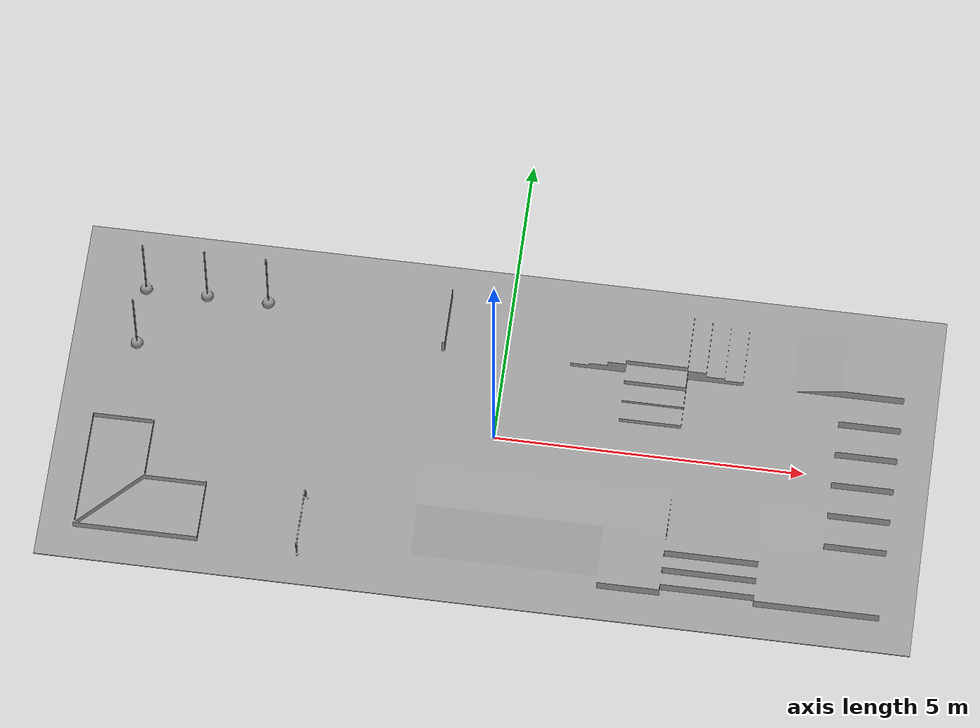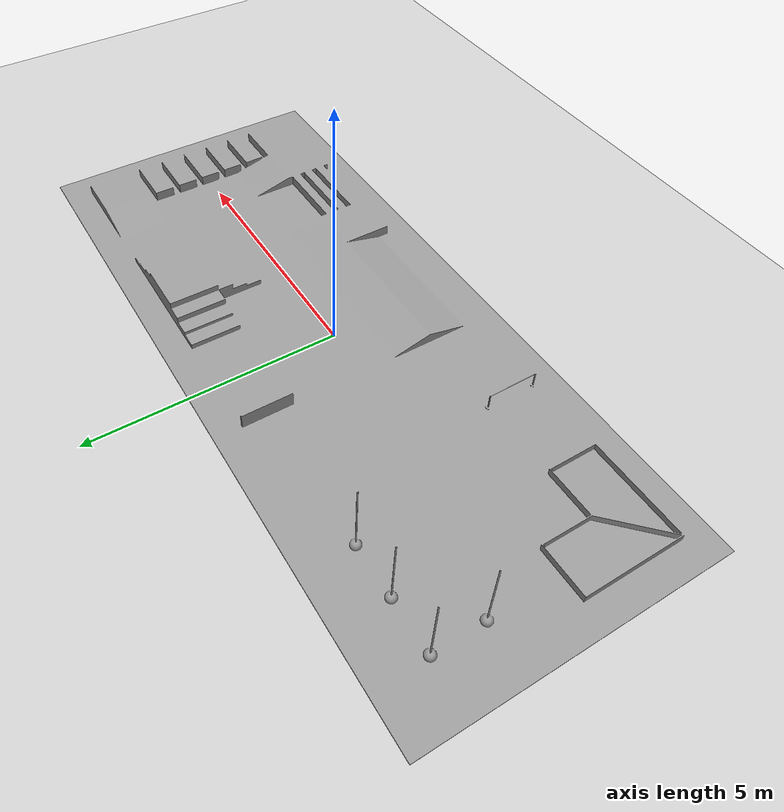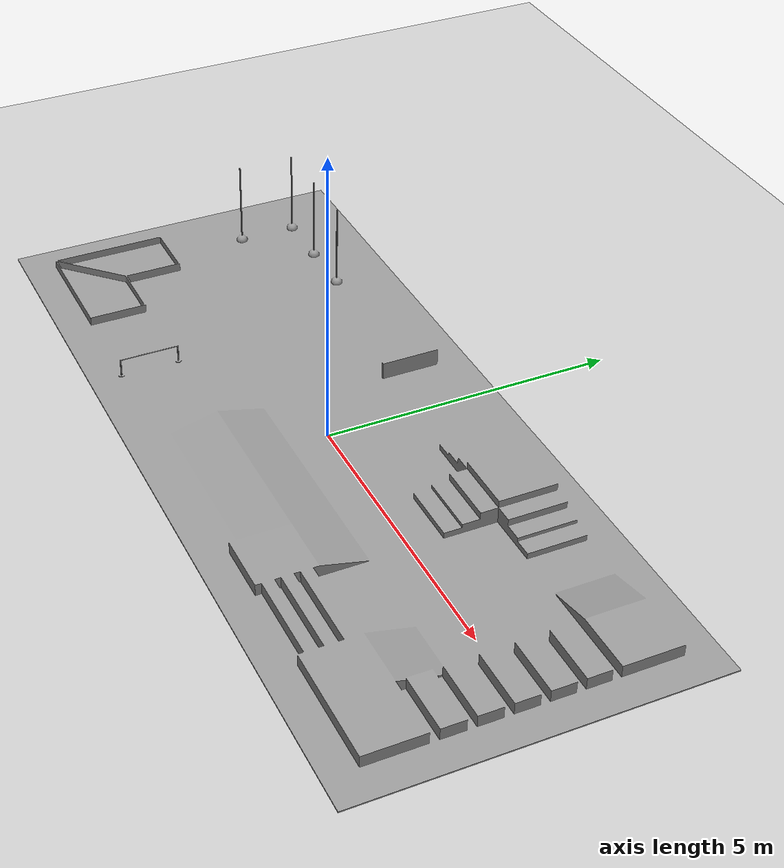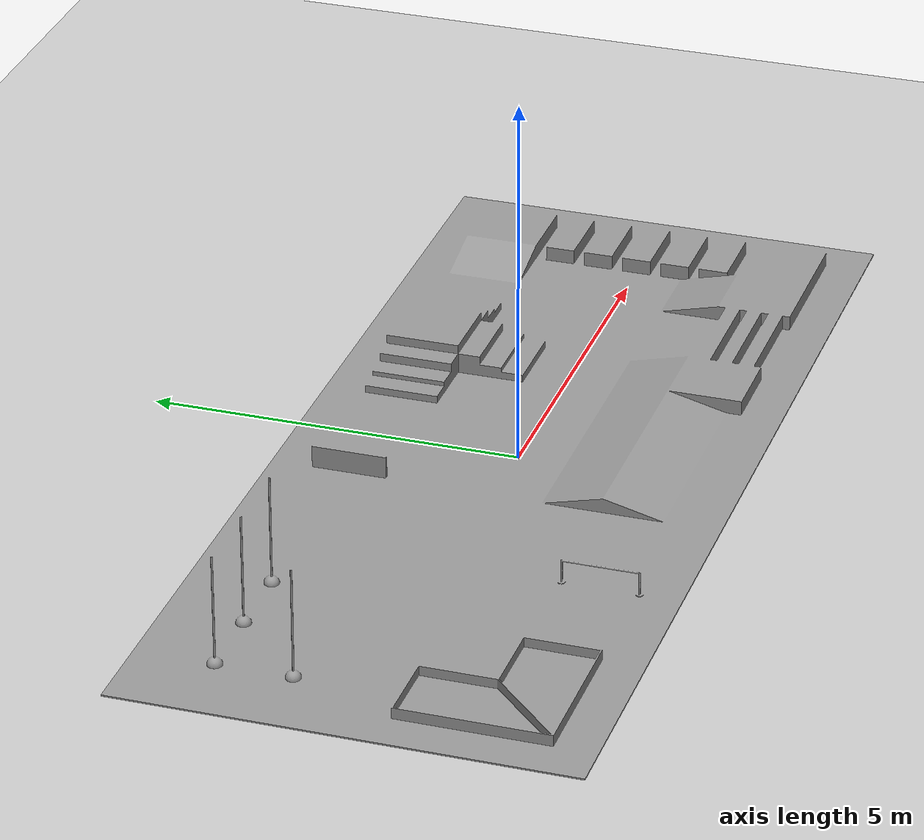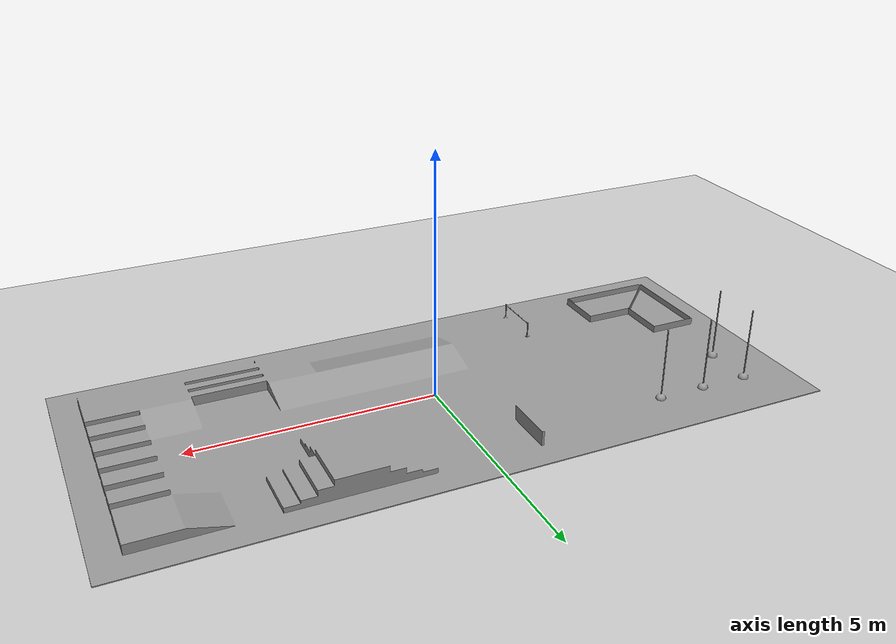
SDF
<?xml version="1.0" ?>

<sdf version="1.6">
  <world name="default">

    <include>
      <uri>model://sun</uri>
    </include>
    <include>
      <uri>model://ground_plane</uri>
    </include>
    <include>
      <uri>model://RC26_zhangai</uri>
    </include>

  </world>
</sdf>

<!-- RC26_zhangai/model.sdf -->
<sdf version='1.6'>
  <model name='RC26_zhangai'>
    <static>true</static>
    <link name='link'>
      <pose>-3.445093872 4.153933533 -2.401362793 1.5708 0 0</pose>
      <inertial>
        <mass>4777316979.4</mass>
        <inertia>
          <ixx>1.4066827705881136e+16</ixx>
          <ixy>-434304158651968.0</ixy>
          <ixz>881366081465248.0</ixz>
          <iyy>7.22932255405455e+16</iyy>
          <iyz>106952028081136.0</iyz>
          <izz>5.829811377427408e+16</izz>
        </inertia>
        <pose>5486.07 2485.78 4230.25 0 0 0</pose>
      </inertial>

      <collision name='collision'>
        <max_contacts>20</max_contacts>
        <geometry>
          <mesh>
            <uri>model://RC26_zhangai/meshes/RC26_zhangai.stl</uri>
            <scale>0.001 0.001 0.001</scale>
          </mesh>
        </geometry>
      </collision>

      <visual name='visual'>
        <cast_shadows>1</cast_shadows>
        <transparency>0</transparency>
        <material>
          <script>
            <uri>file://media/materials/scripts/gazebo.material</uri>
            <name>Gazebo/Grey</name>
          </script>
          <shader type='vertex'>
            <normal_map>__default__</normal_map>
          </shader>
          <lighting>1</lighting>
          <ambient>0.55 0.55 0.55 1</ambient>
          <diffuse>0.65 0.65 0.65 1</diffuse>
          <specular>0.05 0.05 0.05 1</specular>
          <emissive>0 0 0 1</emissive>
        </material>
        <geometry>
          <mesh>
            <uri>model://RC26_zhangai/meshes/RC26_zhangai.stl</uri>
            <scale>0.001 0.001 0.001</scale>
          </mesh>
        </geometry>
      </visual>
    </link>
  </model>
</sdf>
